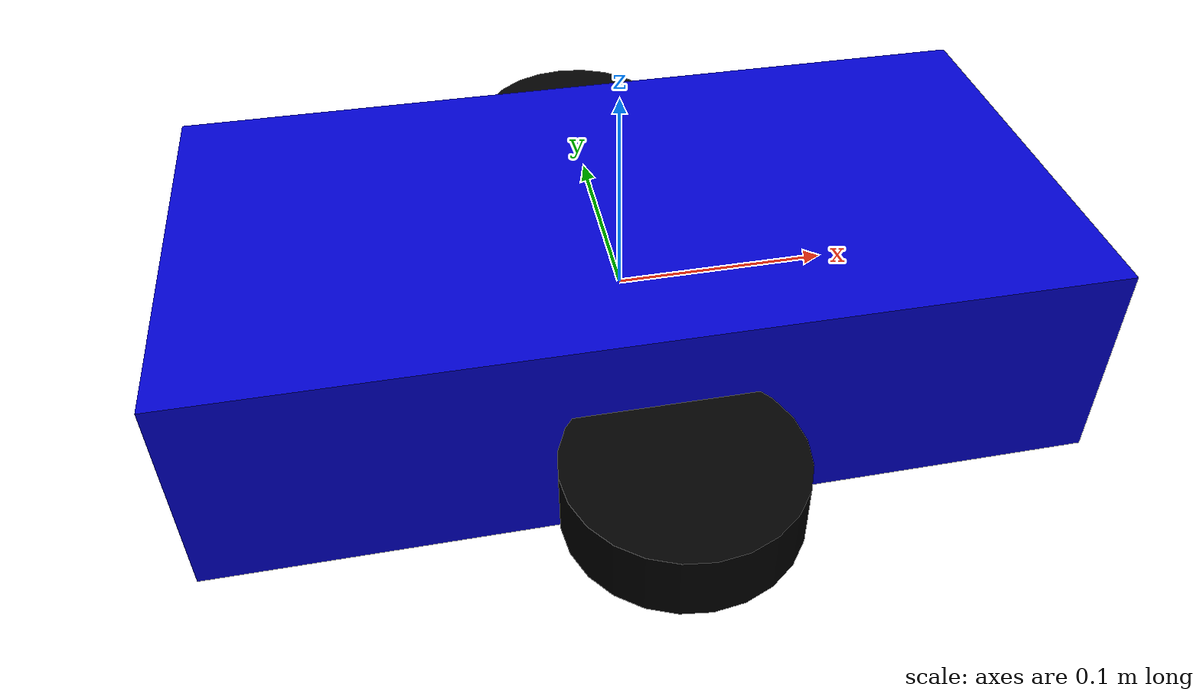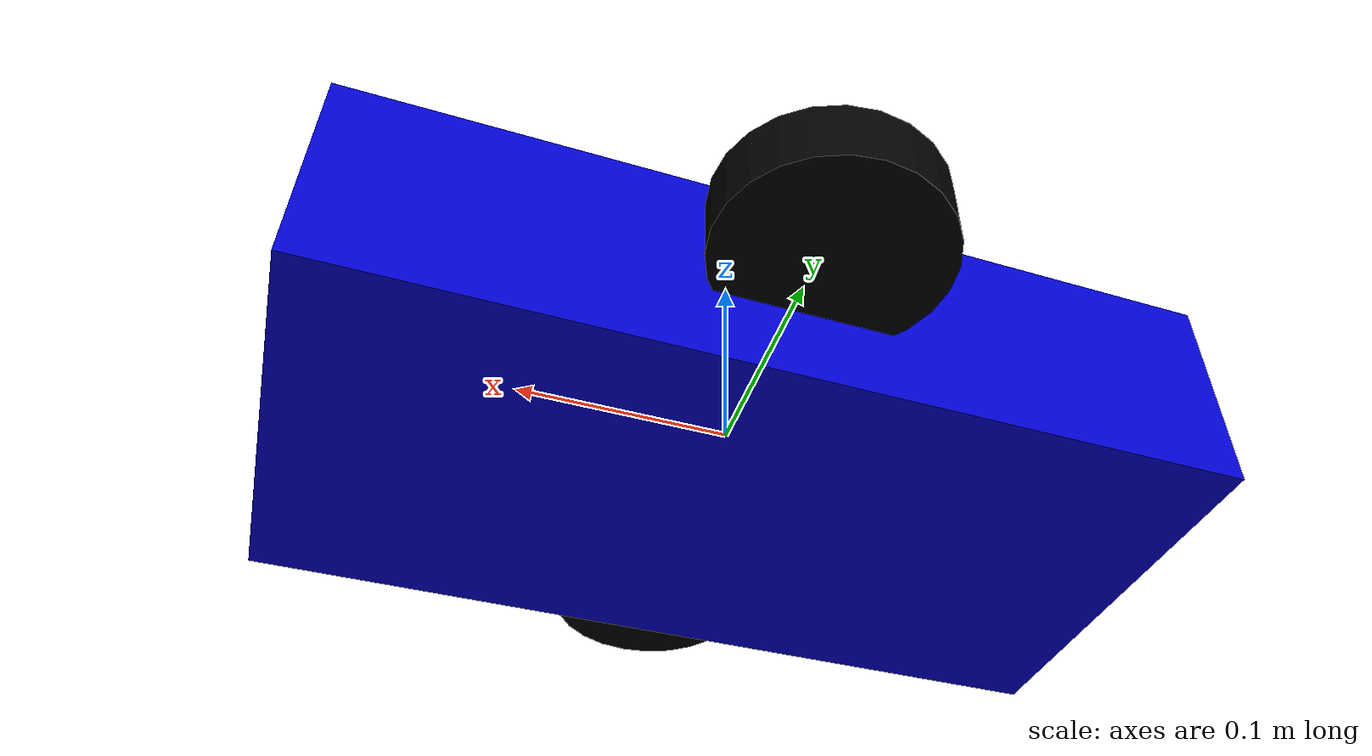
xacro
<?xml version="1.0"?>
<robot name="simple_robot" xmlns:xacro="http://www.ros.org/wiki/xacro">

  <!-- Base Link -->
  <link name="base_link">
    <visual>
      <geometry>
        <box size="0.4 0.2 0.1"/>
      </geometry>
      <material name="blue">
        <color rgba="0 0 0.8 1"/>
      </material>
    </visual>
    <collision>
      <geometry>
        <box size="0.4 0.2 0.1"/>
      </geometry>
    </collision>
    <inertial>
      <mass value="10"/>
      <inertia ixx="0.1" ixy="0" ixz="0" iyy="0.1" iyz="0" izz="0.1"/>
    </inertial>
  </link>

  <!-- Wheels -->
  <xacro:macro name="wheel" params="name parent reflect">
    <link name="${name}_wheel">
      <visual>
        <geometry>
          <cylinder radius="0.05" length="0.03"/>
        </geometry>
        <material name="black">
          <color rgba="0 0 0 1"/>
        </material>
      </visual>
      <collision>
        <geometry>
          <cylinder radius="0.05" length="0.03"/>
        </geometry>
      </collision>
      <inertial>
        <mass value="1"/>
        <inertia ixx="0.001" ixy="0" ixz="0" iyy="0.001" iyz="0" izz="0.001"/>
      </inertial>
    </link>

    <joint name="${name}_wheel_joint" type="continuous">
      <parent link="${parent}"/>
      <child link="${name}_wheel"/>
      <origin xyz="0 ${reflect*0.13} 0" rpy="0 0 ${reflect*1.5708}"/>
      <axis xyz="0 1 0"/>
    </joint>
  </xacro:macro>

  <xacro:wheel name="left" parent="base_link" reflect="1"/>
  <xacro:wheel name="right" parent="base_link" reflect="-1"/>

  <!-- Gazebo Plugins -->
  <gazebo>
    <plugin
      name="gz::sim::systems::DiffDrive"
      filename="gz-sim-diff-drive-system">
      <ros>
        <namespace>/simple_robot</namespace>
      </ros>
      <left_joint>left_wheel_joint</left_joint>
      <right_joint>right_wheel_joint</right_joint>
      <wheel_separation>0.26</wheel_separation>
      <wheel_diameter>0.1</wheel_diameter>
      <max_wheel_torque>10</max_wheel_torque>
      <command_topic>cmd_vel</command_topic>
      <odometry_topic>odom</odometry_topic>
      <odometry_frame>odom</odometry_frame>
      <robot_base_frame>base_link</robot_base_frame>
    </plugin>
  </gazebo>

</robot>
